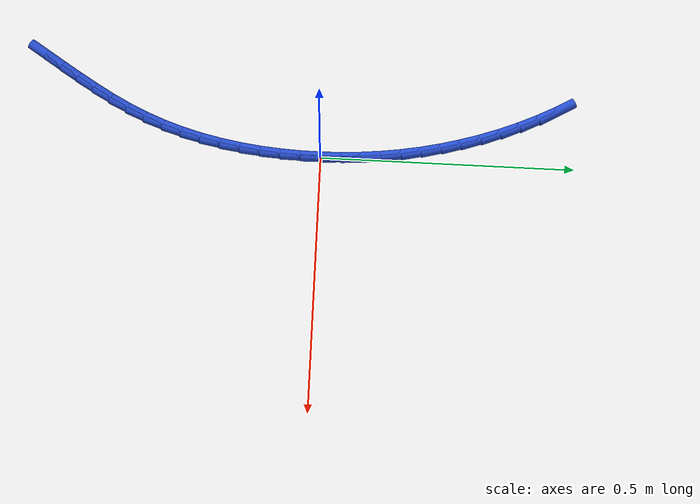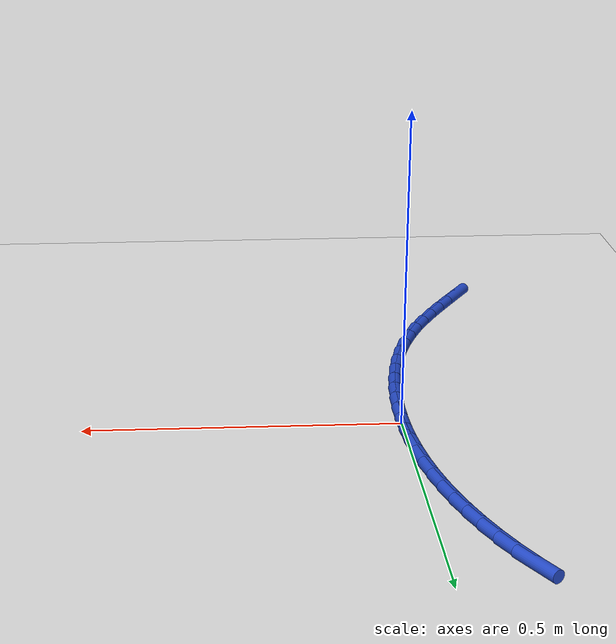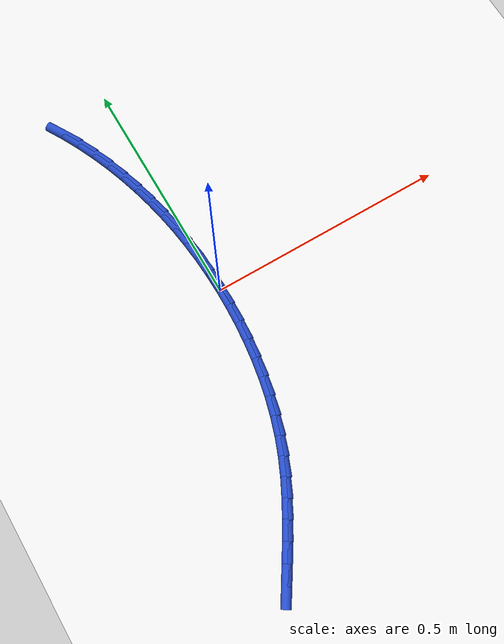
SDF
<sdf version="1.6">
 <world name="default">
  <model name="ground_plane">
   <static>1</static>
   <link name="link">
    <collision name="collision">
     <geometry><plane><normal>0 0 1</normal><size>100 100</size></plane></geometry>
     <surface><friction><ode><mu>100</mu><mu2>50</mu2></ode></friction></surface>
    </collision>
    <visual name="visual">
     <cast_shadows>0</cast_shadows>
     <geometry><plane><normal>0 0 1</normal><size>100 100</size></plane></geometry>
     <material>
      <script><uri>file://media/materials/scripts/gazebo.material</uri><name>Gazebo/WhiteGlow</name></script>
     </material>
    </visual>
   </link>
  </model>
  <model name="line">
   <link name="link_0">
    <pose>-6.071532165918825e-18 6.938893903907228e-18 0.01 0 1.57 -1.5463985044443407</pose>
    <collision name="collision">
     <geometry><cylinder><radius>0.01</radius><length>0.08</length></cylinder></geometry>
    </collision>
    <visual name="visual">
     <material>
      <script><name>Gazebo/Blue</name><uri>file://media/materials/scripts/gazebo.material</uri></script>
     </material>
     <geometry><cylinder><radius>0.01</radius><length>0.08</length></cylinder></geometry>
    </visual>
   </link>
   <link name="link_1">
    <pose>-0.0009689574108318324 0.03970703330716391 0.01 0 1.57 -1.5098031776221879</pose>
    <collision name="collision">
     <geometry><cylinder><radius>0.01</radius><length>0.08</length></cylinder></geometry>
    </collision>
    <visual name="visual">
     <material>
      <script><name>Gazebo/Blue</name><uri>file://media/materials/scripts/gazebo.material</uri></script>
     </material>
     <geometry><cylinder><radius>0.01</radius><length>0.08</length></cylinder></geometry>
    </visual>
   </link>
   <link name="link_2">
    <pose>-0.0033803758794193413 0.07919388500188519 0.01 0 1.57 -1.472248625345816</pose>
    <collision name="collision">
     <geometry><cylinder><radius>0.01</radius><length>0.08</length></cylinder></geometry>
    </collision>
    <visual name="visual">
     <material>
      <script><name>Gazebo/Blue</name><uri>file://media/materials/scripts/gazebo.material</uri></script>
     </material>
     <geometry><cylinder><radius>0.01</radius><length>0.08</length></cylinder></geometry>
    </visual>
   </link>
   <link name="link_3">
    <pose>-0.007262522352865022 0.11845985390627183 0.01 0 1.57 -1.4338380023221324</pose>
    <collision name="collision">
     <geometry><cylinder><radius>0.01</radius><length>0.08</length></cylinder></geometry>
    </collision>
    <visual name="visual">
     <material>
      <script><name>Gazebo/Blue</name><uri>file://media/materials/scripts/gazebo.material</uri></script>
     </material>
     <geometry><cylinder><radius>0.01</radius><length>0.08</length></cylinder></geometry>
    </visual>
   </link>
   <link name="link_4">
    <pose>-0.012643663778271357 0.1575042388424318 0.01 0 1.57 -1.3946894940632477</pose>
    <collision name="collision">
     <geometry><cylinder><radius>0.01</radius><length>0.08</length></cylinder></geometry>
    </collision>
    <visual name="visual">
     <material>
      <script><name>Gazebo/Blue</name><uri>file://media/materials/scripts/gazebo.material</uri></script>
     </material>
     <geometry><cylinder><radius>0.01</radius><length>0.08</length></cylinder></geometry>
    </visual>
   </link>
   <link name="link_5">
    <pose>-0.01955206710274083 0.196326338632473 0.01 0 1.57 -1.3549348991201096</pose>
    <collision name="collision">
     <geometry><cylinder><radius>0.01</radius><length>0.08</length></cylinder></geometry>
    </collision>
    <visual name="visual">
     <material>
      <script><name>Gazebo/Blue</name><uri>file://media/materials/scripts/gazebo.material</uri></script>
     </material>
     <geometry><cylinder><radius>0.01</radius><length>0.08</length></cylinder></geometry>
    </visual>
   </link>
   <link name="link_6">
    <pose>-0.028015999273375912 0.23492545209850355 0.01 0 1.57 -1.3147175864154095</pose>
    <collision name="collision">
     <geometry><cylinder><radius>0.01</radius><length>0.08</length></cylinder></geometry>
    </collision>
    <visual name="visual">
     <material>
      <script><name>Gazebo/Blue</name><uri>file://media/materials/scripts/gazebo.material</uri></script>
     </material>
     <geometry><cylinder><radius>0.01</radius><length>0.08</length></cylinder></geometry>
    </visual>
   </link>
   <link name="link_7">
    <pose>-0.03806372723727911 0.27330087806263126 0.01 0 1.57 -1.2741898827602673</pose>
    <collision name="collision">
     <geometry><cylinder><radius>0.01</radius><length>0.08</length></cylinder></geometry>
    </collision>
    <visual name="visual">
     <material>
      <script><name>Gazebo/Blue</name><uri>file://media/materials/scripts/gazebo.material</uri></script>
     </material>
     <geometry><cylinder><radius>0.01</radius><length>0.08</length></cylinder></geometry>
    </visual>
   </link>
   <link name="link_8">
    <pose>-0.049723517941552886 0.3114519153469641 0.01 0 1.57 -1.233507411304486</pose>
    <collision name="collision">
     <geometry><cylinder><radius>0.01</radius><length>0.08</length></cylinder></geometry>
    </collision>
    <visual name="visual">
     <material>
      <script><name>Gazebo/Blue</name><uri>file://media/materials/scripts/gazebo.material</uri></script>
     </material>
     <geometry><cylinder><radius>0.01</radius><length>0.08</length></cylinder></geometry>
    </visual>
   </link>
   <link name="link_9">
    <pose>-0.06302364483047866 0.34937756747782184 0.01 0 1.57 -1.1921834135835399</pose>
    <collision name="collision">
     <geometry><cylinder><radius>0.01</radius><length>0.08</length></cylinder></geometry>
    </collision>
    <visual name="visual">
     <material>
      <script><name>Gazebo/Blue</name><uri>file://media/materials/scripts/gazebo.material</uri></script>
     </material>
     <geometry><cylinder><radius>0.01</radius><length>0.08</length></cylinder></geometry>
    </visual>
   </link>
   <link name="link_10">
    <pose>-0.07799386094021594 0.38700959075672176 0.01 0 1.57 -1.1486053949267057</pose>
    <collision name="collision">
     <geometry><cylinder><radius>0.01</radius><length>0.08</length></cylinder></geometry>
    </collision>
    <visual name="visual">
     <material>
      <script><name>Gazebo/Blue</name><uri>file://media/materials/scripts/gazebo.material</uri></script>
     </material>
     <geometry><cylinder><radius>0.01</radius><length>0.08</length></cylinder></geometry>
    </visual>
   </link>
   <link name="link_11">
    <pose>-0.09466727212605346 0.4241273563680289 0.01 0 1.57 -1.1021181854967506</pose>
    <collision name="collision">
     <geometry><cylinder><radius>0.01</radius><length>0.08</length></cylinder></geometry>
    </collision>
    <visual name="visual">
     <material>
      <script><name>Gazebo/Blue</name><uri>file://media/materials/scripts/gazebo.material</uri></script>
     </material>
     <geometry><cylinder><radius>0.01</radius><length>0.08</length></cylinder></geometry>
    </visual>
   </link>
   <link name="link_12">
    <pose>-0.11307744601664074 0.4604892479674049 0.01 0 1.57 -1.0522414140331564</pose>
    <collision name="collision">
     <geometry><cylinder><radius>0.01</radius><length>0.08</length></cylinder></geometry>
    </collision>
    <visual name="visual">
     <material>
      <script><name>Gazebo/Blue</name><uri>file://media/materials/scripts/gazebo.material</uri></script>
     </material>
     <geometry><cylinder><radius>0.01</radius><length>0.08</length></cylinder></geometry>
    </visual>
   </link>
   <link name="link_165">
    <pose>-0.17863142373230587 -0.5528554210541952 0.01 0 1.57 1.0049364390634252</pose>
    <collision name="collision">
     <geometry><cylinder><radius>0.01</radius><length>0.08</length></cylinder></geometry>
    </collision>
    <visual name="visual">
     <material>
      <script><name>Gazebo/Blue</name><uri>file://media/materials/scripts/gazebo.material</uri></script>
     </material>
     <geometry><cylinder><radius>0.01</radius><length>0.08</length></cylinder></geometry>
    </visual>
   </link>
   <link name="link_166">
    <pose>-0.15733622755669988 -0.5193272262643437 0.01 0 1.57 1.0119217058763166</pose>
    <collision name="collision">
     <geometry><cylinder><radius>0.01</radius><length>0.08</length></cylinder></geometry>
    </collision>
    <visual name="visual">
     <material>
      <script><name>Gazebo/Blue</name><uri>file://media/materials/scripts/gazebo.material</uri></script>
     </material>
     <geometry><cylinder><radius>0.01</radius><length>0.08</length></cylinder></geometry>
    </visual>
   </link>
   <link name="link_167">
    <pose>-0.13645512256607795 -0.4859379145863234 0.01 0 1.57 1.0289436851276057</pose>
    <collision name="collision">
     <geometry><cylinder><radius>0.01</radius><length>0.08</length></cylinder></geometry>
    </collision>
    <visual name="visual">
     <material>
      <script><name>Gazebo/Blue</name><uri>file://media/materials/scripts/gazebo.material</uri></script>
     </material>
     <geometry><cylinder><radius>0.01</radius><length>0.08</length></cylinder></geometry>
    </visual>
   </link>
   <link name="link_168">
    <pose>-0.1162960221281666 -0.4524482970344963 0.01 0 1.57 1.0561572983731542</pose>
    <collision name="collision">
     <geometry><cylinder><radius>0.01</radius><length>0.08</length></cylinder></geometry>
    </collision>
    <visual name="visual">
     <material>
      <script><name>Gazebo/Blue</name><uri>file://media/materials/scripts/gazebo.material</uri></script>
     </material>
     <geometry><cylinder><radius>0.01</radius><length>0.08</length></cylinder></geometry>
    </visual>
   </link>
   <link name="link_169">
    <pose>-0.09716683961069235 -0.4186191846232239 0.01 0 1.57 1.0935835914341157</pose>
    <collision name="collision">
     <geometry><cylinder><radius>0.01</radius><length>0.08</length></cylinder></geometry>
    </collision>
    <visual name="visual">
     <material>
      <script><name>Gazebo/Blue</name><uri>file://media/materials/scripts/gazebo.material</uri></script>
     </material>
     <geometry><cylinder><radius>0.01</radius><length>0.08</length></cylinder></geometry>
    </visual>
   </link>
   <link name="link_170">
    <pose>-0.07937548838138136 -0.38421138836686697 0.01 0 1.57 1.1410221243425653</pose>
    <collision name="collision">
     <geometry><cylinder><radius>0.01</radius><length>0.08</length></cylinder></geometry>
    </collision>
    <visual name="visual">
     <material>
      <script><name>Gazebo/Blue</name><uri>file://media/materials/scripts/gazebo.material</uri></script>
     </material>
     <geometry><cylinder><radius>0.01</radius><length>0.08</length></cylinder></geometry>
    </visual>
   </link>
   <link name="link_171">
    <pose>-0.06322988180796088 -0.34898571927978855 0.01 0 1.57 1.1968427452986148</pose>
    <collision name="collision">
     <geometry><cylinder><radius>0.01</radius><length>0.08</length></cylinder></geometry>
    </collision>
    <visual name="visual">
     <material>
      <script><name>Gazebo/Blue</name><uri>file://media/materials/scripts/gazebo.material</uri></script>
     </material>
     <geometry><cylinder><radius>0.01</radius><length>0.08</length></cylinder></geometry>
    </visual>
   </link>
   <link name="link_172">
    <pose>-0.04900517963705336 -0.3127369149372448 0.01 0 1.57 1.2525268158824456</pose>
    <collision name="collision">
     <geometry><cylinder><radius>0.01</radius><length>0.08</length></cylinder></geometry>
    </collision>
    <visual name="visual">
     <material>
      <script><name>Gazebo/Blue</name><uri>file://media/materials/scripts/gazebo.material</uri></script>
     </material>
     <geometry><cylinder><radius>0.01</radius><length>0.08</length></cylinder></geometry>
    </visual>
   </link>
   <link name="link_173">
    <pose>-0.036738725888639634 -0.2755060450591486 0.01 0 1.57 1.3046678418375872</pose>
    <collision name="collision">
     <geometry><cylinder><radius>0.01</radius><length>0.08</length></cylinder></geometry>
    </collision>
    <visual name="visual">
     <material>
      <script><name>Gazebo/Blue</name><uri>file://media/materials/scripts/gazebo.material</uri></script>
     </material>
     <geometry><cylinder><radius>0.01</radius><length>0.08</length></cylinder></geometry>
    </visual>
   </link>
   <link name="link_174">
    <pose>-0.026362917013477448 -0.2374428852116084 0.01 0 1.57 1.3535251923222462</pose>
    <collision name="collision">
     <geometry><cylinder><radius>0.01</radius><length>0.08</length></cylinder></geometry>
    </collision>
    <visual name="visual">
     <material>
      <script><name>Gazebo/Blue</name><uri>file://media/materials/scripts/gazebo.material</uri></script>
     </material>
     <geometry><cylinder><radius>0.01</radius><length>0.08</length></cylinder></geometry>
    </visual>
   </link>
   <link name="link_175">
    <pose>-0.017809688616909902 -0.19869768830948067 0.01 0 1.57 1.3993980850583991</pose>
    <collision name="collision">
     <geometry><cylinder><radius>0.01</radius><length>0.08</length></cylinder></geometry>
    </collision>
    <visual name="visual">
     <material>
      <script><name>Gazebo/Blue</name><uri>file://media/materials/scripts/gazebo.material</uri></script>
     </material>
     <geometry><cylinder><radius>0.01</radius><length>0.08</length></cylinder></geometry>
    </visual>
   </link>
   <link name="link_176">
    <pose>-0.011010976304279968 -0.15942070726762086 0.01 0 1.57 1.4425962884121324</pose>
    <collision name="collision">
     <geometry><cylinder><radius>0.01</radius><length>0.08</length></cylinder></geometry>
    </collision>
    <visual name="visual">
     <material>
      <script><name>Gazebo/Blue</name><uri>file://media/materials/scripts/gazebo.material</uri></script>
     </material>
     <geometry><cylinder><radius>0.01</radius><length>0.08</length></cylinder></geometry>
    </visual>
   </link>
   <link name="link_177">
    <pose>-0.005898715680931011 -0.11976219500088701 0.01 0 1.57 1.4834311251251269</pose>
    <collision name="collision">
     <geometry><cylinder><radius>0.01</radius><length>0.08</length></cylinder></geometry>
    </collision>
    <visual name="visual">
     <material>
      <script><name>Gazebo/Blue</name><uri>file://media/materials/scripts/gazebo.material</uri></script>
     </material>
     <geometry><cylinder><radius>0.01</radius><length>0.08</length></cylinder></geometry>
    </visual>
   </link>
   <link name="link_178">
    <pose>-0.00240484235220597 -0.0798724044241347 0.01 0 1.57 1.522210356555679</pose>
    <collision name="collision">
     <geometry><cylinder><radius>0.01</radius><length>0.08</length></cylinder></geometry>
    </collision>
    <visual name="visual">
     <material>
      <script><name>Gazebo/Blue</name><uri>file://media/materials/scripts/gazebo.material</uri></script>
     </material>
     <geometry><cylinder><radius>0.01</radius><length>0.08</length></cylinder></geometry>
    </visual>
   </link>
   <link name="link_179">
    <pose>-0.00046129192344793266 -0.03990158845222022 0.01 0 1.57 1.559236100941211</pose>
    <collision name="collision">
     <geometry><cylinder><radius>0.01</radius><length>0.08</length></cylinder></geometry>
    </collision>
    <visual name="visual">
     <material>
      <script><name>Gazebo/Blue</name><uri>file://media/materials/scripts/gazebo.material</uri></script>
     </material>
     <geometry><cylinder><radius>0.01</radius><length>0.08</length></cylinder></geometry>
    </visual>
   </link>
   <link name="link_180">
    <pose>4.336808689942018e-18 5.551115123125783e-17 0.01 0 1.57 -1.5467875445849655</pose>
    <collision name="collision">
     <geometry><cylinder><radius>0.01</radius><length>0.08</length></cylinder></geometry>
    </collision>
    <visual name="visual">
     <material>
      <script><name>Gazebo/Blue</name><uri>file://media/materials/scripts/gazebo.material</uri></script>
     </material>
     <geometry><cylinder><radius>0.01</radius><length>0.08</length></cylinder></geometry>
    </visual>
   </link>
   <link name="link_181">
    <pose>-0.0009529021872052533 0.03968210801766976 0.01 0 1.57 -1.546787544584966</pose>
    <collision name="collision">
     <geometry><cylinder><radius>0.01</radius><length>0.08</length></cylinder></geometry>
    </collision>
    <visual name="visual">
     <material>
      <script><name>Gazebo/Blue</name><uri>file://media/materials/scripts/gazebo.material</uri></script>
     </material>
     <geometry><cylinder><radius>0.01</radius><length>0.08</length></cylinder></geometry>
    </visual>
   </link>
  </model>
 </world>
</sdf>
